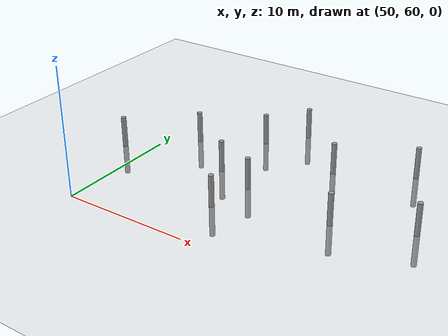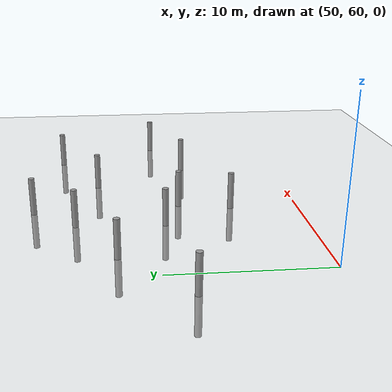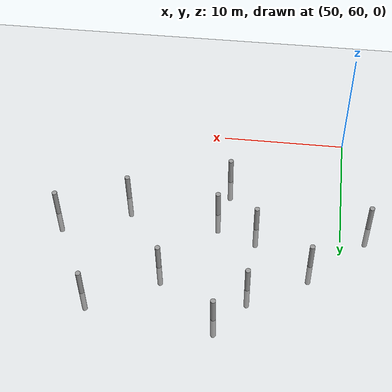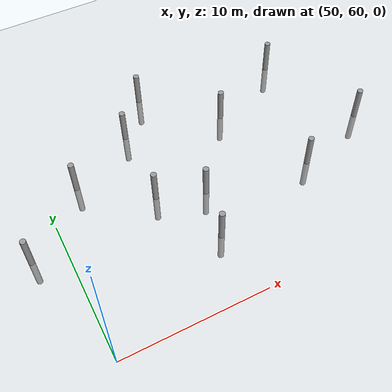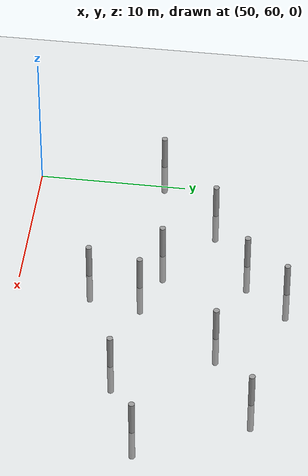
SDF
<sdf version="1.6">
 <world name="default">
  <model name="ground_plane">
   <static>1</static>
   <link name="link">
    <collision name="collision">
     <geometry><plane><normal>0 0 1</normal><size>100 100</size></plane></geometry>
     <surface><friction><ode><mu>100</mu><mu2>50</mu2></ode></friction></surface>
    </collision>
    <visual name="visual">
     <cast_shadows>0</cast_shadows>
     <geometry><plane><normal>0 0 1</normal><size>100 100</size></plane></geometry>
     <material>
      <script><uri>file://media/materials/scripts/gazebo.material</uri><name>Gazebo/Grey</name></script>
     </material>
    </visual>
   </link>
  </model>
  <model name="empty_pillars_1">
   <model name="empty_pillar_clone_6">
    <link name="link">
     <inertial>
      <mass>1</mass>
      <inertia><ixx>0.145833</ixx><ixy>0</ixy><ixz>0</ixz><iyy>0.145833</iyy><iyz>0</iyz><izz>0.125</izz></inertia>
     </inertial>
     <visual name="visual">
      <geometry><cylinder><radius>0.2</radius><length>5</length></cylinder></geometry>
      <material>
       <script><name>Gazebo/Grey</name><uri>file://media/materials/scripts/gazebo.material</uri></script>
       <shader type="vertex"><normal_map>__default__</normal_map></shader>
       <ambient>0.3 0.3 0.3 1</ambient>
       <diffuse>0.7 0.7 0.7 1</diffuse>
       <specular>0.01 0.01 0.01 1</specular>
       <emissive>0 0 0 1</emissive>
      </material>
     </visual>
     <collision name="collision">
      <geometry><cylinder><radius>0.05</radius><length>5</length></cylinder></geometry>
      <surface>
       <friction>
        <ode><mu>1</mu><mu2>1</mu2><fdir1>0 0 0</fdir1><slip1>0</slip1><slip2>0</slip2></ode>
        <torsional>
         <coefficient>1</coefficient>
         <patch_radius>0</patch_radius>
         <surface_radius>0</surface_radius>
         <use_patch_radius>1</use_patch_radius>
         <ode><slip>0</slip></ode>
        </torsional>
       </friction>
       <bounce><restitution_coefficient>0</restitution_coefficient><threshold>1e+06</threshold></bounce>
       <contact>
        <collide_without_contact>0</collide_without_contact>
        <collide_without_contact_bitmask>1</collide_without_contact_bitmask>
        <collide_bitmask>1</collide_bitmask>
        <ode>
         <soft_cfm>0</soft_cfm>
         <soft_erp>0.2</soft_erp>
         <kp>1e+13</kp>
         <kd>1</kd>
         <max_vel>0.01</max_vel>
         <min_depth>0</min_depth>
        </ode>
        <bullet>
         <split_impulse>1</split_impulse>
         <split_impulse_penetration_threshold>-0.01</split_impulse_penetration_threshold>
         <soft_cfm>0</soft_cfm>
         <soft_erp>0.2</soft_erp>
         <kp>1e+13</kp>
         <kd>1</kd>
        </bullet>
       </contact>
      </surface>
     </collision>
    </link>
    <static>0</static>
    <pose>24.9156 -9.11394 0 0 -0 0</pose>
   </model>
   <static>0</static>
   <pose>22.8728 77.4317 0 0 -0 0</pose>
  </model>
  <model name="empty_pillars_2">
   <model name="empty_pillar">
    <link name="link">
     <inertial>
      <mass>1</mass>
      <inertia><ixx>0.145833</ixx><ixy>0</ixy><ixz>0</ixz><iyy>0.145833</iyy><iyz>0</iyz><izz>0.125</izz></inertia>
     </inertial>
     <visual name="visual">
      <geometry><cylinder><radius>0.2</radius><length>5</length></cylinder></geometry>
      <material>
       <script><name>Gazebo/Grey</name><uri>file://media/materials/scripts/gazebo.material</uri></script>
       <shader type="vertex"><normal_map>__default__</normal_map></shader>
       <ambient>0.3 0.3 0.3 1</ambient>
       <diffuse>0.7 0.7 0.7 1</diffuse>
       <specular>0.01 0.01 0.01 1</specular>
       <emissive>0 0 0 1</emissive>
      </material>
     </visual>
     <collision name="collision">
      <geometry><cylinder><radius>0.05</radius><length>5</length></cylinder></geometry>
      <surface>
       <friction>
        <ode><mu>1</mu><mu2>1</mu2><fdir1>0 0 0</fdir1><slip1>0</slip1><slip2>0</slip2></ode>
        <torsional>
         <coefficient>1</coefficient>
         <patch_radius>0</patch_radius>
         <surface_radius>0</surface_radius>
         <use_patch_radius>1</use_patch_radius>
         <ode><slip>0</slip></ode>
        </torsional>
       </friction>
       <bounce><restitution_coefficient>0</restitution_coefficient><threshold>1e+06</threshold></bounce>
       <contact>
        <collide_without_contact>0</collide_without_contact>
        <collide_without_contact_bitmask>1</collide_without_contact_bitmask>
        <collide_bitmask>1</collide_bitmask>
        <ode>
         <soft_cfm>0</soft_cfm>
         <soft_erp>0.2</soft_erp>
         <kp>1e+13</kp>
         <kd>1</kd>
         <max_vel>0.01</max_vel>
         <min_depth>0</min_depth>
        </ode>
        <bullet>
         <split_impulse>1</split_impulse>
         <split_impulse_penetration_threshold>-0.01</split_impulse_penetration_threshold>
         <soft_cfm>0</soft_cfm>
         <soft_erp>0.2</soft_erp>
         <kp>1e+13</kp>
         <kd>1</kd>
        </bullet>
       </contact>
      </surface>
     </collision>
    </link>
    <static>0</static>
    <pose>-3.84527 -0.717439 0 0 -0 0</pose>
   </model>
   <model name="empty_pillar_clone_14">
    <link name="link">
     <inertial>
      <mass>1</mass>
      <inertia><ixx>0.145833</ixx><ixy>0</ixy><ixz>0</ixz><iyy>0.145833</iyy><iyz>0</iyz><izz>0.125</izz></inertia>
     </inertial>
     <visual name="visual">
      <geometry><cylinder><radius>0.2</radius><length>5</length></cylinder></geometry>
      <material>
       <script><name>Gazebo/Grey</name><uri>file://media/materials/scripts/gazebo.material</uri></script>
       <shader type="vertex"><normal_map>__default__</normal_map></shader>
       <ambient>0.3 0.3 0.3 1</ambient>
       <diffuse>0.7 0.7 0.7 1</diffuse>
       <specular>0.01 0.01 0.01 1</specular>
       <emissive>0 0 0 1</emissive>
      </material>
     </visual>
     <collision name="collision">
      <geometry><cylinder><radius>0.05</radius><length>5</length></cylinder></geometry>
      <surface>
       <friction>
        <ode><mu>1</mu><mu2>1</mu2><fdir1>0 0 0</fdir1><slip1>0</slip1><slip2>0</slip2></ode>
        <torsional>
         <coefficient>1</coefficient>
         <patch_radius>0</patch_radius>
         <surface_radius>0</surface_radius>
         <use_patch_radius>1</use_patch_radius>
         <ode><slip>0</slip></ode>
        </torsional>
       </friction>
       <bounce><restitution_coefficient>0</restitution_coefficient><threshold>1e+06</threshold></bounce>
       <contact>
        <collide_without_contact>0</collide_without_contact>
        <collide_without_contact_bitmask>1</collide_without_contact_bitmask>
        <collide_bitmask>1</collide_bitmask>
        <ode>
         <soft_cfm>0</soft_cfm>
         <soft_erp>0.2</soft_erp>
         <kp>1e+13</kp>
         <kd>1</kd>
         <max_vel>0.01</max_vel>
         <min_depth>0</min_depth>
        </ode>
        <bullet>
         <split_impulse>1</split_impulse>
         <split_impulse_penetration_threshold>-0.01</split_impulse_penetration_threshold>
         <soft_cfm>0</soft_cfm>
         <soft_erp>0.2</soft_erp>
         <kp>1e+13</kp>
         <kd>1</kd>
        </bullet>
       </contact>
      </surface>
     </collision>
    </link>
    <static>0</static>
    <pose>-14.0146 0.646152 0 0 -0 0</pose>
   </model>
   <model name="empty_pillar_clone_15">
    <link name="link">
     <inertial>
      <mass>1</mass>
      <inertia><ixx>0.145833</ixx><ixy>0</ixy><ixz>0</ixz><iyy>0.145833</iyy><iyz>0</iyz><izz>0.125</izz></inertia>
     </inertial>
     <visual name="visual">
      <geometry><cylinder><radius>0.2</radius><length>5</length></cylinder></geometry>
      <material>
       <script><name>Gazebo/Grey</name><uri>file://media/materials/scripts/gazebo.material</uri></script>
       <shader type="vertex"><normal_map>__default__</normal_map></shader>
       <ambient>0.3 0.3 0.3 1</ambient>
       <diffuse>0.7 0.7 0.7 1</diffuse>
       <specular>0.01 0.01 0.01 1</specular>
       <emissive>0 0 0 1</emissive>
      </material>
     </visual>
     <collision name="collision">
      <geometry><cylinder><radius>0.05</radius><length>5</length></cylinder></geometry>
      <surface>
       <friction>
        <ode><mu>1</mu><mu2>1</mu2><fdir1>0 0 0</fdir1><slip1>0</slip1><slip2>0</slip2></ode>
        <torsional>
         <coefficient>1</coefficient>
         <patch_radius>0</patch_radius>
         <surface_radius>0</surface_radius>
         <use_patch_radius>1</use_patch_radius>
         <ode><slip>0</slip></ode>
        </torsional>
       </friction>
       <bounce><restitution_coefficient>0</restitution_coefficient><threshold>1e+06</threshold></bounce>
       <contact>
        <collide_without_contact>0</collide_without_contact>
        <collide_without_contact_bitmask>1</collide_without_contact_bitmask>
        <collide_bitmask>1</collide_bitmask>
        <ode>
         <soft_cfm>0</soft_cfm>
         <soft_erp>0.2</soft_erp>
         <kp>1e+13</kp>
         <kd>1</kd>
         <max_vel>0.01</max_vel>
         <min_depth>0</min_depth>
        </ode>
        <bullet>
         <split_impulse>1</split_impulse>
         <split_impulse_penetration_threshold>-0.01</split_impulse_penetration_threshold>
         <soft_cfm>0</soft_cfm>
         <soft_erp>0.2</soft_erp>
         <kp>1e+13</kp>
         <kd>1</kd>
        </bullet>
       </contact>
      </surface>
     </collision>
    </link>
    <static>0</static>
    <pose>-9.37193 -3.58732 0 0 -0 0</pose>
   </model>
   <model name="empty_pillar_clone_36">
    <link name="link">
     <inertial>
      <mass>1</mass>
      <inertia><ixx>0.145833</ixx><ixy>0</ixy><ixz>0</ixz><iyy>0.145833</iyy><iyz>0</iyz><izz>0.125</izz></inertia>
     </inertial>
     <visual name="visual">
      <geometry><cylinder><radius>0.2</radius><length>5</length></cylinder></geometry>
      <material>
       <script><name>Gazebo/Grey</name><uri>file://media/materials/scripts/gazebo.material</uri></script>
       <shader type="vertex"><normal_map>__default__</normal_map></shader>
       <ambient>0.3 0.3 0.3 1</ambient>
       <diffuse>0.7 0.7 0.7 1</diffuse>
       <specular>0.01 0.01 0.01 1</specular>
       <emissive>0 0 0 1</emissive>
      </material>
     </visual>
     <collision name="collision">
      <geometry><cylinder><radius>0.05</radius><length>5</length></cylinder></geometry>
      <surface>
       <friction>
        <ode><mu>1</mu><mu2>1</mu2><fdir1>0 0 0</fdir1><slip1>0</slip1><slip2>0</slip2></ode>
        <torsional>
         <coefficient>1</coefficient>
         <patch_radius>0</patch_radius>
         <surface_radius>0</surface_radius>
         <use_patch_radius>1</use_patch_radius>
         <ode><slip>0</slip></ode>
        </torsional>
       </friction>
       <bounce><restitution_coefficient>0</restitution_coefficient><threshold>1e+06</threshold></bounce>
       <contact>
        <collide_without_contact>0</collide_without_contact>
        <collide_without_contact_bitmask>1</collide_without_contact_bitmask>
        <collide_bitmask>1</collide_bitmask>
        <ode>
         <soft_cfm>0</soft_cfm>
         <soft_erp>0.2</soft_erp>
         <kp>1e+13</kp>
         <kd>1</kd>
         <max_vel>0.01</max_vel>
         <min_depth>0</min_depth>
        </ode>
        <bullet>
         <split_impulse>1</split_impulse>
         <split_impulse_penetration_threshold>-0.01</split_impulse_penetration_threshold>
         <soft_cfm>0</soft_cfm>
         <soft_erp>0.2</soft_erp>
         <kp>1e+13</kp>
         <kd>1</kd>
        </bullet>
       </contact>
      </surface>
     </collision>
    </link>
    <static>0</static>
    <pose>-21.0146 -4.84034 0 0 -0 0</pose>
   </model>
   <model name="empty_pillar_clone_37">
    <link name="link">
     <inertial>
      <mass>1</mass>
      <inertia><ixx>0.145833</ixx><ixy>0</ixy><ixz>0</ixz><iyy>0.145833</iyy><iyz>0</iyz><izz>0.125</izz></inertia>
     </inertial>
     <visual name="visual">
      <geometry><cylinder><radius>0.2</radius><length>5</length></cylinder></geometry>
      <material>
       <script><name>Gazebo/Grey</name><uri>file://media/materials/scripts/gazebo.material</uri></script>
       <shader type="vertex"><normal_map>__default__</normal_map></shader>
       <ambient>0.3 0.3 0.3 1</ambient>
       <diffuse>0.7 0.7 0.7 1</diffuse>
       <specular>0.01 0.01 0.01 1</specular>
       <emissive>0 0 0 1</emissive>
      </material>
     </visual>
     <collision name="collision">
      <geometry><cylinder><radius>0.05</radius><length>5</length></cylinder></geometry>
      <surface>
       <friction>
        <ode><mu>1</mu><mu2>1</mu2><fdir1>0 0 0</fdir1><slip1>0</slip1><slip2>0</slip2></ode>
        <torsional>
         <coefficient>1</coefficient>
         <patch_radius>0</patch_radius>
         <surface_radius>0</surface_radius>
         <use_patch_radius>1</use_patch_radius>
         <ode><slip>0</slip></ode>
        </torsional>
       </friction>
       <bounce><restitution_coefficient>0</restitution_coefficient><threshold>1e+06</threshold></bounce>
       <contact>
        <collide_without_contact>0</collide_without_contact>
        <collide_without_contact_bitmask>1</collide_without_contact_bitmask>
        <collide_bitmask>1</collide_bitmask>
        <ode>
         <soft_cfm>0</soft_cfm>
         <soft_erp>0.2</soft_erp>
         <kp>1e+13</kp>
         <kd>1</kd>
         <max_vel>0.01</max_vel>
         <min_depth>0</min_depth>
        </ode>
        <bullet>
         <split_impulse>1</split_impulse>
         <split_impulse_penetration_threshold>-0.01</split_impulse_penetration_threshold>
         <soft_cfm>0</soft_cfm>
         <soft_erp>0.2</soft_erp>
         <kp>1e+13</kp>
         <kd>1</kd>
        </bullet>
       </contact>
      </surface>
     </collision>
    </link>
    <static>0</static>
    <pose>-16.6035 -7.98282 0 0 -0 0</pose>
   </model>
   <model name="empty_pillar_clone_38">
    <link name="link">
     <inertial>
      <mass>1</mass>
      <inertia><ixx>0.145833</ixx><ixy>0</ixy><ixz>0</ixz><iyy>0.145833</iyy><iyz>0</iyz><izz>0.125</izz></inertia>
     </inertial>
     <visual name="visual">
      <geometry><cylinder><radius>0.2</radius><length>5</length></cylinder></geometry>
      <material>
       <script><name>Gazebo/Grey</name><uri>file://media/materials/scripts/gazebo.material</uri></script>
       <shader type="vertex"><normal_map>__default__</normal_map></shader>
       <ambient>0.3 0.3 0.3 1</ambient>
       <diffuse>0.7 0.7 0.7 1</diffuse>
       <specular>0.01 0.01 0.01 1</specular>
       <emissive>0 0 0 1</emissive>
      </material>
     </visual>
     <collision name="collision">
      <geometry><cylinder><radius>0.05</radius><length>5</length></cylinder></geometry>
      <surface>
       <friction>
        <ode><mu>1</mu><mu2>1</mu2><fdir1>0 0 0</fdir1><slip1>0</slip1><slip2>0</slip2></ode>
        <torsional>
         <coefficient>1</coefficient>
         <patch_radius>0</patch_radius>
         <surface_radius>0</surface_radius>
         <use_patch_radius>1</use_patch_radius>
         <ode><slip>0</slip></ode>
        </torsional>
       </friction>
       <bounce><restitution_coefficient>0</restitution_coefficient><threshold>1e+06</threshold></bounce>
       <contact>
        <collide_without_contact>0</collide_without_contact>
        <collide_without_contact_bitmask>1</collide_without_contact_bitmask>
        <collide_bitmask>1</collide_bitmask>
        <ode>
         <soft_cfm>0</soft_cfm>
         <soft_erp>0.2</soft_erp>
         <kp>1e+13</kp>
         <kd>1</kd>
         <max_vel>0.01</max_vel>
         <min_depth>0</min_depth>
        </ode>
        <bullet>
         <split_impulse>1</split_impulse>
         <split_impulse_penetration_threshold>-0.01</split_impulse_penetration_threshold>
         <soft_cfm>0</soft_cfm>
         <soft_erp>0.2</soft_erp>
         <kp>1e+13</kp>
         <kd>1</kd>
        </bullet>
       </contact>
      </surface>
     </collision>
    </link>
    <static>0</static>
    <pose>-16.33 -2.21607 0 0 -0 0</pose>
   </model>
   <model name="empty_pillar_clone_39">
    <link name="link">
     <inertial>
      <mass>1</mass>
      <inertia><ixx>0.145833</ixx><ixy>0</ixy><ixz>0</ixz><iyy>0.145833</iyy><iyz>0</iyz><izz>0.125</izz></inertia>
     </inertial>
     <visual name="visual">
      <geometry><cylinder><radius>0.2</radius><length>5</length></cylinder></geometry>
      <material>
       <script><name>Gazebo/Grey</name><uri>file://media/materials/scripts/gazebo.material</uri></script>
       <shader type="vertex"><normal_map>__default__</normal_map></shader>
       <ambient>0.3 0.3 0.3 1</ambient>
       <diffuse>0.7 0.7 0.7 1</diffuse>
       <specular>0.01 0.01 0.01 1</specular>
       <emissive>0 0 0 1</emissive>
      </material>
     </visual>
     <collision name="collision">
      <geometry><cylinder><radius>0.05</radius><length>5</length></cylinder></geometry>
      <surface>
       <friction>
        <ode><mu>1</mu><mu2>1</mu2><fdir1>0 0 0</fdir1><slip1>0</slip1><slip2>0</slip2></ode>
        <torsional>
         <coefficient>1</coefficient>
         <patch_radius>0</patch_radius>
         <surface_radius>0</surface_radius>
         <use_patch_radius>1</use_patch_radius>
         <ode><slip>0</slip></ode>
        </torsional>
       </friction>
       <bounce><restitution_coefficient>0</restitution_coefficient><threshold>1e+06</threshold></bounce>
       <contact>
        <collide_without_contact>0</collide_without_contact>
        <collide_without_contact_bitmask>1</collide_without_contact_bitmask>
        <collide_bitmask>1</collide_bitmask>
        <ode>
         <soft_cfm>0</soft_cfm>
         <soft_erp>0.2</soft_erp>
         <kp>1e+13</kp>
         <kd>1</kd>
         <max_vel>0.01</max_vel>
         <min_depth>0</min_depth>
        </ode>
        <bullet>
         <split_impulse>1</split_impulse>
         <split_impulse_penetration_threshold>-0.01</split_impulse_penetration_threshold>
         <soft_cfm>0</soft_cfm>
         <soft_erp>0.2</soft_erp>
         <kp>1e+13</kp>
         <kd>1</kd>
        </bullet>
       </contact>
      </surface>
     </collision>
    </link>
    <static>0</static>
    <pose>-13.4361 -9.12638 0 0 -0 0</pose>
   </model>
   <model name="empty_pillar_clone_41">
    <link name="link">
     <inertial>
      <mass>1</mass>
      <inertia><ixx>0.145833</ixx><ixy>0</ixy><ixz>0</ixz><iyy>0.145833</iyy><iyz>0</iyz><izz>0.125</izz></inertia>
     </inertial>
     <visual name="visual">
      <geometry><cylinder><radius>0.2</radius><length>5</length></cylinder></geometry>
      <material>
       <script><name>Gazebo/Grey</name><uri>file://media/materials/scripts/gazebo.material</uri></script>
       <shader type="vertex"><normal_map>__default__</normal_map></shader>
       <ambient>0.3 0.3 0.3 1</ambient>
       <diffuse>0.7 0.7 0.7 1</diffuse>
       <specular>0.01 0.01 0.01 1</specular>
       <emissive>0 0 0 1</emissive>
      </material>
     </visual>
     <collision name="collision">
      <geometry><cylinder><radius>0.05</radius><length>5</length></cylinder></geometry>
      <surface>
       <friction>
        <ode><mu>1</mu><mu2>1</mu2><fdir1>0 0 0</fdir1><slip1>0</slip1><slip2>0</slip2></ode>
        <torsional>
         <coefficient>1</coefficient>
         <patch_radius>0</patch_radius>
         <surface_radius>0</surface_radius>
         <use_patch_radius>1</use_patch_radius>
         <ode><slip>0</slip></ode>
        </torsional>
       </friction>
       <bounce><restitution_coefficient>0</restitution_coefficient><threshold>1e+06</threshold></bounce>
       <contact>
        <collide_without_contact>0</collide_without_contact>
        <collide_without_contact_bitmask>1</collide_without_contact_bitmask>
        <collide_bitmask>1</collide_bitmask>
        <ode>
         <soft_cfm>0</soft_cfm>
         <soft_erp>0.2</soft_erp>
         <kp>1e+13</kp>
         <kd>1</kd>
         <max_vel>0.01</max_vel>
         <min_depth>0</min_depth>
        </ode>
        <bullet>
         <split_impulse>1</split_impulse>
         <split_impulse_penetration_threshold>-0.01</split_impulse_penetration_threshold>
         <soft_cfm>0</soft_cfm>
         <soft_erp>0.2</soft_erp>
         <kp>1e+13</kp>
         <kd>1</kd>
        </bullet>
       </contact>
      </surface>
     </collision>
    </link>
    <static>0</static>
    <pose>-14.1448 -12.6326 0 0 -0 0</pose>
   </model>
   <model name="empty_pillar_clone_47">
    <link name="link">
     <inertial>
      <mass>1</mass>
      <inertia><ixx>0.145833</ixx><ixy>0</ixy><ixz>0</ixz><iyy>0.145833</iyy><iyz>0</iyz><izz>0.125</izz></inertia>
     </inertial>
     <visual name="visual">
      <geometry><cylinder><radius>0.2</radius><length>5</length></cylinder></geometry>
      <material>
       <script><name>Gazebo/Grey</name><uri>file://media/materials/scripts/gazebo.material</uri></script>
       <shader type="vertex"><normal_map>__default__</normal_map></shader>
       <ambient>0.3 0.3 0.3 1</ambient>
       <diffuse>0.7 0.7 0.7 1</diffuse>
       <specular>0.01 0.01 0.01 1</specular>
       <emissive>0 0 0 1</emissive>
      </material>
     </visual>
     <collision name="collision">
      <geometry><cylinder><radius>0.05</radius><length>5</length></cylinder></geometry>
      <surface>
       <friction>
        <ode><mu>1</mu><mu2>1</mu2><fdir1>0 0 0</fdir1><slip1>0</slip1><slip2>0</slip2></ode>
        <torsional>
         <coefficient>1</coefficient>
         <patch_radius>0</patch_radius>
         <surface_radius>0</surface_radius>
         <use_patch_radius>1</use_patch_radius>
         <ode><slip>0</slip></ode>
        </torsional>
       </friction>
       <bounce><restitution_coefficient>0</restitution_coefficient><threshold>1e+06</threshold></bounce>
       <contact>
        <collide_without_contact>0</collide_without_contact>
        <collide_without_contact_bitmask>1</collide_without_contact_bitmask>
        <collide_bitmask>1</collide_bitmask>
        <ode>
         <soft_cfm>0</soft_cfm>
         <soft_erp>0.2</soft_erp>
         <kp>1e+13</kp>
         <kd>1</kd>
         <max_vel>0.01</max_vel>
         <min_depth>0</min_depth>
        </ode>
        <bullet>
         <split_impulse>1</split_impulse>
         <split_impulse_penetration_threshold>-0.01</split_impulse_penetration_threshold>
         <soft_cfm>0</soft_cfm>
         <soft_erp>0.2</soft_erp>
         <kp>1e+13</kp>
         <kd>1</kd>
        </bullet>
       </contact>
      </surface>
     </collision>
    </link>
    <static>0</static>
    <pose>-0.569433 -7.97346 0 0 -0 0</pose>
   </model>
   <model name="empty_pillar_clone_5">
    <link name="link">
     <inertial>
      <mass>1</mass>
      <inertia><ixx>0.145833</ixx><ixy>0</ixy><ixz>0</ixz><iyy>0.145833</iyy><iyz>0</iyz><izz>0.125</izz></inertia>
     </inertial>
     <visual name="visual">
      <geometry><cylinder><radius>0.2</radius><length>5</length></cylinder></geometry>
      <material>
       <script><name>Gazebo/Grey</name><uri>file://media/materials/scripts/gazebo.material</uri></script>
       <shader type="vertex"><normal_map>__default__</normal_map></shader>
       <ambient>0.3 0.3 0.3 1</ambient>
       <diffuse>0.7 0.7 0.7 1</diffuse>
       <specular>0.01 0.01 0.01 1</specular>
       <emissive>0 0 0 1</emissive>
      </material>
     </visual>
     <collision name="collision">
      <geometry><cylinder><radius>0.05</radius><length>5</length></cylinder></geometry>
      <surface>
       <friction>
        <ode><mu>1</mu><mu2>1</mu2><fdir1>0 0 0</fdir1><slip1>0</slip1><slip2>0</slip2></ode>
        <torsional>
         <coefficient>1</coefficient>
         <patch_radius>0</patch_radius>
         <surface_radius>0</surface_radius>
         <use_patch_radius>1</use_patch_radius>
         <ode><slip>0</slip></ode>
        </torsional>
       </friction>
       <bounce><restitution_coefficient>0</restitution_coefficient><threshold>1e+06</threshold></bounce>
       <contact>
        <collide_without_contact>0</collide_without_contact>
        <collide_without_contact_bitmask>1</collide_without_contact_bitmask>
        <collide_bitmask>1</collide_bitmask>
        <ode>
         <soft_cfm>0</soft_cfm>
         <soft_erp>0.2</soft_erp>
         <kp>1e+13</kp>
         <kd>1</kd>
         <max_vel>0.01</max_vel>
         <min_depth>0</min_depth>
        </ode>
        <bullet>
         <split_impulse>1</split_impulse>
         <split_impulse_penetration_threshold>-0.01</split_impulse_penetration_threshold>
         <soft_cfm>0</soft_cfm>
         <soft_erp>0.2</soft_erp>
         <kp>1e+13</kp>
         <kd>1</kd>
        </bullet>
       </contact>
      </surface>
     </collision>
    </link>
    <static>0</static>
    <pose>-6.03595 -10.0932 0 0 -0 0</pose>
   </model>
   <static>0</static>
   <pose>73.3006 77.2503 0 0 -0 0</pose>
  </model>
 </world>
</sdf>
